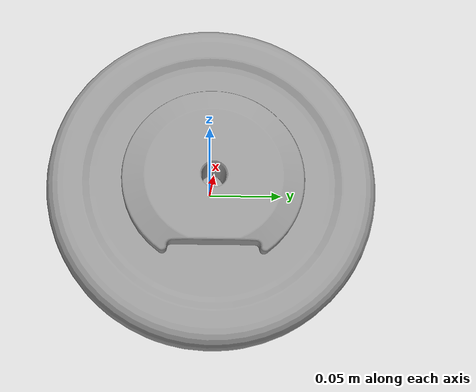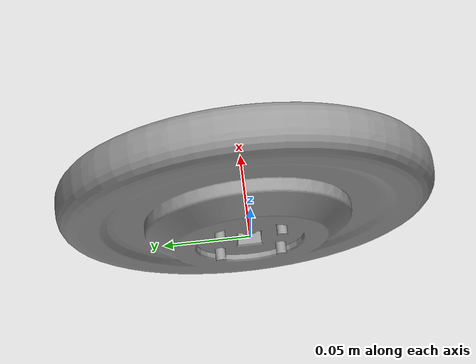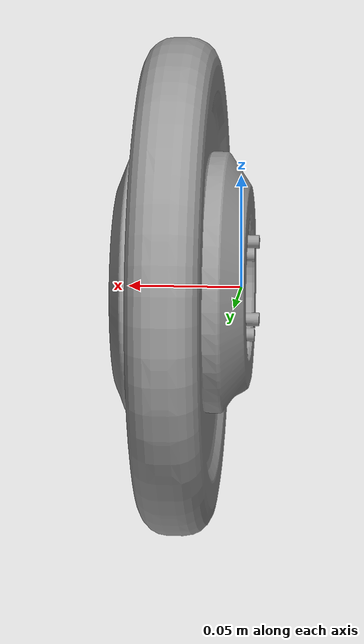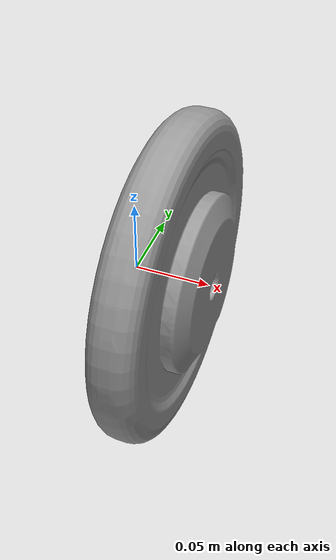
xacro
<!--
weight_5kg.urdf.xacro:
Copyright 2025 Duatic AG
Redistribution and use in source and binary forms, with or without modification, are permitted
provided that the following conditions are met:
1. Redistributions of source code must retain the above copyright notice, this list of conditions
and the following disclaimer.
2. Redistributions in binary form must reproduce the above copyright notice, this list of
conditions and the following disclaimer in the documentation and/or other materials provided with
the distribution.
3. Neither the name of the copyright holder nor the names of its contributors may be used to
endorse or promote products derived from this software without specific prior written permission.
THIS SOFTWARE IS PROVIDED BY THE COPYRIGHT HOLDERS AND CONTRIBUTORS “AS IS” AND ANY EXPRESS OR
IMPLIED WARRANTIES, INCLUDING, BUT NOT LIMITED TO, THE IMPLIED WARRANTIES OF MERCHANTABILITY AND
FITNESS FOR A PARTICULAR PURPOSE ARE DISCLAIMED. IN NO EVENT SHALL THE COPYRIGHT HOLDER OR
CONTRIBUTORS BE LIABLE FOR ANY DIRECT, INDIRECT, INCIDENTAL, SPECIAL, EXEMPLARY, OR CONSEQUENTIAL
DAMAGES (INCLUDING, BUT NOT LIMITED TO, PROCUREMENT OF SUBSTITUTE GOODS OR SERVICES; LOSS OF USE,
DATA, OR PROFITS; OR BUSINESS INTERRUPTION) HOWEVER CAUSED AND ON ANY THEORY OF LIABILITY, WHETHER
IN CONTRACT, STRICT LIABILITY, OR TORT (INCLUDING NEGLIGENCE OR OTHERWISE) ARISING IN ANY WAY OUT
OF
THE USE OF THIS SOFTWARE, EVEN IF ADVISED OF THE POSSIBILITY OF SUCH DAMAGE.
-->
<robot name="weight_on_world" xmlns:xacro="http://www.ros.org/wiki/xacro">

  <xacro:arg name="tf_prefix" default="" />

  <xacro:include filename="$(find dynaarm_end_effectors)/urdf/weight_5kg.urdf.xacro" />

  <link name="base_link" />

  <!-- Add platform to base_link -->
  <xacro:weight_5kg tf_prefix="$(arg tf_prefix)"
              parent="base_link">
    <origin xyz="0 0 0.0" rpy="0 0 0" />
  </xacro:weight_5kg>

</robot>

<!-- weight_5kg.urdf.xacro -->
<robot name="weight_5kg" xmlns:xacro="http://www.ros.org/wiki/xacro">

  <!-- Link Definition -->
<xacro:macro name="weight_5kg" params="tf_prefix parent *origin">

  <link name="${tf_prefix}weight_5kg_link">

    <!-- Inertial Properties -->
    <inertial>
      <origin xyz="0.026295 0 0.000104" rpy="0 0 0"/>
      <mass value="5.417999"/>
      <inertia
        ixx="0.031114" ixy="0.0"  ixz="0.000015"
        iyy="0.015956" iyz="0.0"
        izz=" 0.019591"/>
    </inertial>

    <!-- Visual -->
    <visual>
      <origin xyz="0 0 0" rpy="0 0 0"/>
      <geometry>
      <mesh filename="file://$(find dynaarm_end_effectors)/meshes/weight_mesh.stl" scale="1 1 1"/>
      </geometry>
      <material name="gray">
        <color rgba="0.6 0.6 0.6 1.0"/>
      </material>
    </visual>

    <collision>
      <origin xyz="0 0 0" rpy="0 0 0"/>
      <geometry>
      <mesh filename="file://$(find dynaarm_end_effectors)/meshes/weight_mesh.stl" scale="1 1 1"/>
      </geometry>
    </collision>

  </link>

  <!-- Fixed Joint to parent link -->
  <joint name="${tf_prefix}weight_5kg_joint" type="fixed">
    <parent link="${parent}"/>
    <child link="${tf_prefix}weight_5kg_link"/>
    <xacro:insert_block name="origin" />
  </joint>

</xacro:macro>

</robot>
